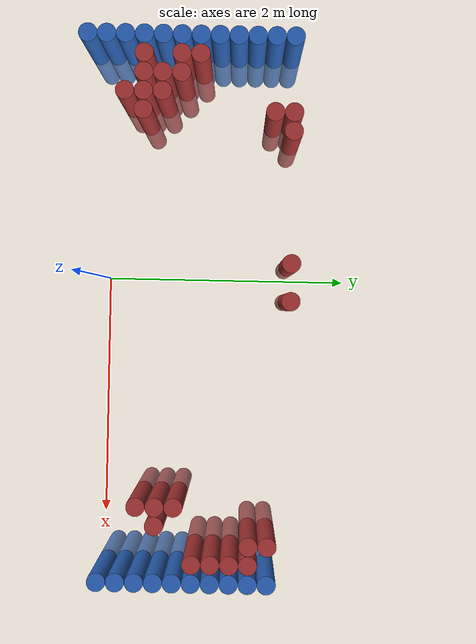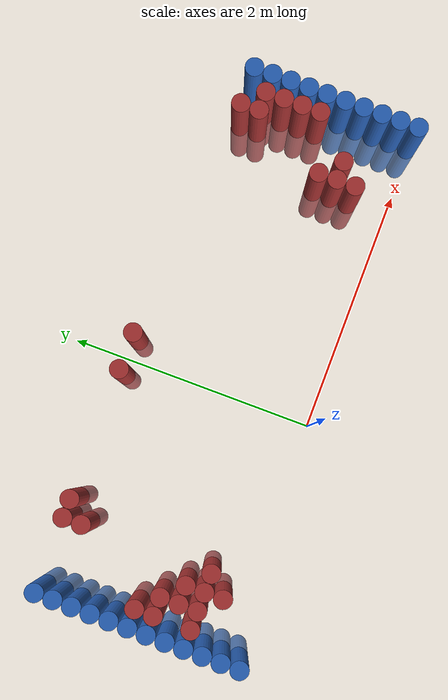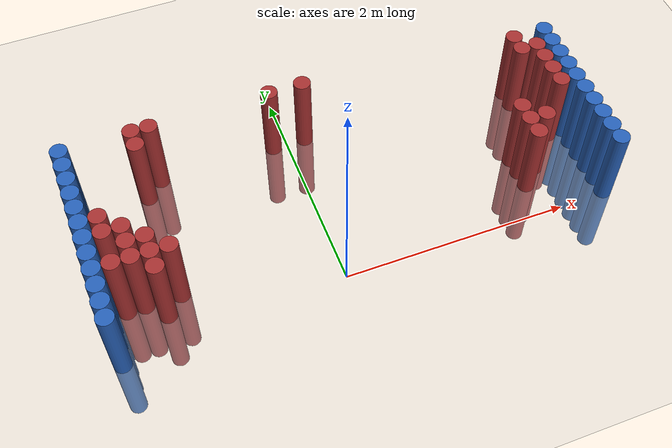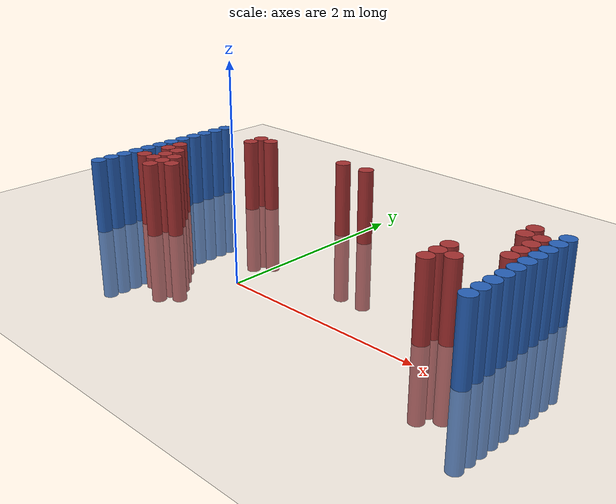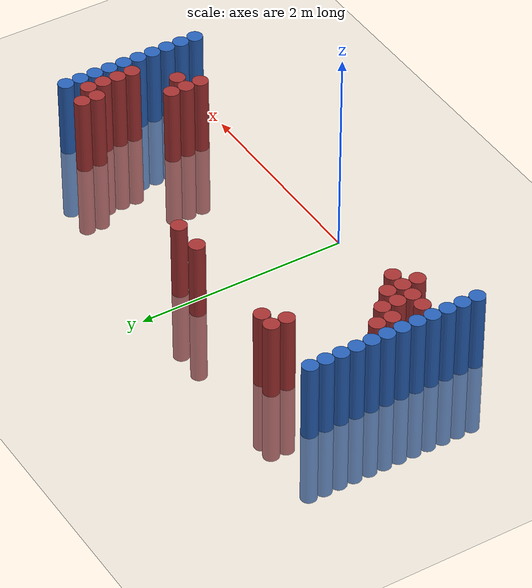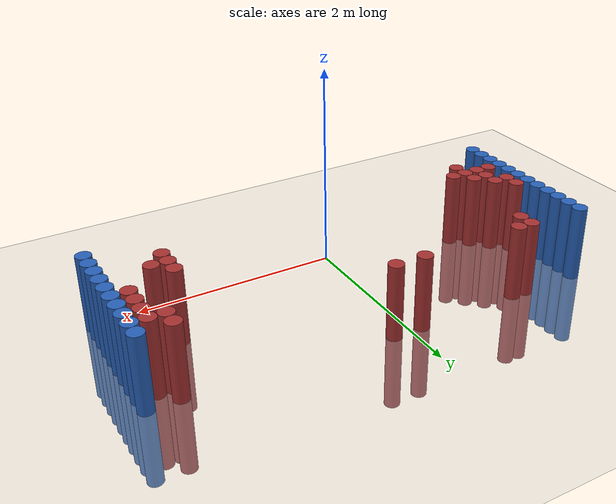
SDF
<sdf version="1.6">
 <world name="default">
  <model name="ground_plane">
   <static>1</static>
   <link name="link">
    <collision name="collision">
     <geometry><plane><normal>0 0 1</normal><size>100 100</size></plane></geometry>
     <surface><friction><ode><mu>100</mu><mu2>50</mu2></ode></friction></surface>
    </collision>
    <visual name="visual">
     <cast_shadows>0</cast_shadows>
     <geometry><plane><normal>0 0 1</normal><size>100 100</size></plane></geometry>
     <material>
      <script><uri>file://media/materials/scripts/gazebo.material</uri><name>Gazebo/Grey</name></script>
     </material>
    </visual>
   </link>
  </model>
  <model name="unit_cylinder_93">
   <static>1</static>
   <pose>-1.925000 -0.125000 0.000000 0.000000 0.000000 0.000000</pose>
   <link name="link">
    <inertial>
     <mass>1</mass>
     <inertia><ixx>0.145833</ixx><ixy>0</ixy><ixz>0</ixz><iyy>0.145833</iyy><iyz>0</iyz><izz>0.125</izz></inertia>
    </inertial>
    <collision name="collision">
     <geometry><cylinder><radius>0.075000</radius><length>1.5</length></cylinder></geometry>
    </collision>
    <visual name="visual">
     <geometry><cylinder><radius>0.075000</radius><length>1.5</length></cylinder></geometry>
     <material>
      <ambient>0.152000 0.379000 0.720000 1</ambient>
      <diffuse>0.152000 0.379000 0.720000 1</diffuse>
     </material>
     <material>
      <script><name>Gazebo/Grey</name><uri>file://media/materials/scripts/gazebo.material</uri></script>
     </material>
    </visual>
   </link>
  </model>
  <model name="unit_cylinder_94">
   <static>1</static>
   <pose>2.425000 0.025000 0.000000 0.000000 0.000000 0.000000</pose>
   <link name="link">
    <inertial>
     <mass>1</mass>
     <inertia><ixx>0.145833</ixx><ixy>0</ixy><ixz>0</ixz><iyy>0.145833</iyy><iyz>0</iyz><izz>0.125</izz></inertia>
    </inertial>
    <collision name="collision">
     <geometry><cylinder><radius>0.075000</radius><length>1.5</length></cylinder></geometry>
    </collision>
    <visual name="visual">
     <geometry><cylinder><radius>0.075000</radius><length>1.5</length></cylinder></geometry>
     <material>
      <ambient>0.152000 0.379000 0.720000 1</ambient>
      <diffuse>0.152000 0.379000 0.720000 1</diffuse>
     </material>
     <material>
      <script><name>Gazebo/Grey</name><uri>file://media/materials/scripts/gazebo.material</uri></script>
     </material>
    </visual>
   </link>
  </model>
  <model name="unit_cylinder_95">
   <static>1</static>
   <pose>-1.925000 0.025000 0.000000 0.000000 0.000000 0.000000</pose>
   <link name="link">
    <inertial>
     <mass>1</mass>
     <inertia><ixx>0.145833</ixx><ixy>0</ixy><ixz>0</ixz><iyy>0.145833</iyy><iyz>0</iyz><izz>0.125</izz></inertia>
    </inertial>
    <collision name="collision">
     <geometry><cylinder><radius>0.075000</radius><length>1.5</length></cylinder></geometry>
    </collision>
    <visual name="visual">
     <geometry><cylinder><radius>0.075000</radius><length>1.5</length></cylinder></geometry>
     <material>
      <ambient>0.152000 0.379000 0.720000 1</ambient>
      <diffuse>0.152000 0.379000 0.720000 1</diffuse>
     </material>
     <material>
      <script><name>Gazebo/Grey</name><uri>file://media/materials/scripts/gazebo.material</uri></script>
     </material>
    </visual>
   </link>
  </model>
  <model name="unit_cylinder_96">
   <static>1</static>
   <pose>-1.925000 0.175000 0.000000 0.000000 0.000000 0.000000</pose>
   <link name="link">
    <inertial>
     <mass>1</mass>
     <inertia><ixx>0.145833</ixx><ixy>0</ixy><ixz>0</ixz><iyy>0.145833</iyy><iyz>0</iyz><izz>0.125</izz></inertia>
    </inertial>
    <collision name="collision">
     <geometry><cylinder><radius>0.075000</radius><length>1.5</length></cylinder></geometry>
    </collision>
    <visual name="visual">
     <geometry><cylinder><radius>0.075000</radius><length>1.5</length></cylinder></geometry>
     <material>
      <ambient>0.152000 0.379000 0.720000 1</ambient>
      <diffuse>0.152000 0.379000 0.720000 1</diffuse>
     </material>
     <material>
      <script><name>Gazebo/Grey</name><uri>file://media/materials/scripts/gazebo.material</uri></script>
     </material>
    </visual>
   </link>
  </model>
  <model name="unit_cylinder_97">
   <static>1</static>
   <pose>-1.925000 0.325000 0.000000 0.000000 0.000000 0.000000</pose>
   <link name="link">
    <inertial>
     <mass>1</mass>
     <inertia><ixx>0.145833</ixx><ixy>0</ixy><ixz>0</ixz><iyy>0.145833</iyy><iyz>0</iyz><izz>0.125</izz></inertia>
    </inertial>
    <collision name="collision">
     <geometry><cylinder><radius>0.075000</radius><length>1.5</length></cylinder></geometry>
    </collision>
    <visual name="visual">
     <geometry><cylinder><radius>0.075000</radius><length>1.5</length></cylinder></geometry>
     <material>
      <ambient>0.152000 0.379000 0.720000 1</ambient>
      <diffuse>0.152000 0.379000 0.720000 1</diffuse>
     </material>
     <material>
      <script><name>Gazebo/Grey</name><uri>file://media/materials/scripts/gazebo.material</uri></script>
     </material>
    </visual>
   </link>
  </model>
  <model name="unit_cylinder_98">
   <static>1</static>
   <pose>-1.925000 0.475000 0.000000 0.000000 0.000000 0.000000</pose>
   <link name="link">
    <inertial>
     <mass>1</mass>
     <inertia><ixx>0.145833</ixx><ixy>0</ixy><ixz>0</ixz><iyy>0.145833</iyy><iyz>0</iyz><izz>0.125</izz></inertia>
    </inertial>
    <collision name="collision">
     <geometry><cylinder><radius>0.075000</radius><length>1.5</length></cylinder></geometry>
    </collision>
    <visual name="visual">
     <geometry><cylinder><radius>0.075000</radius><length>1.5</length></cylinder></geometry>
     <material>
      <ambient>0.152000 0.379000 0.720000 1</ambient>
      <diffuse>0.152000 0.379000 0.720000 1</diffuse>
     </material>
     <material>
      <script><name>Gazebo/Grey</name><uri>file://media/materials/scripts/gazebo.material</uri></script>
     </material>
    </visual>
   </link>
  </model>
  <model name="unit_cylinder_99">
   <static>1</static>
   <pose>-1.925000 0.625000 0.000000 0.000000 0.000000 0.000000</pose>
   <link name="link">
    <inertial>
     <mass>1</mass>
     <inertia><ixx>0.145833</ixx><ixy>0</ixy><ixz>0</ixz><iyy>0.145833</iyy><iyz>0</iyz><izz>0.125</izz></inertia>
    </inertial>
    <collision name="collision">
     <geometry><cylinder><radius>0.075000</radius><length>1.5</length></cylinder></geometry>
    </collision>
    <visual name="visual">
     <geometry><cylinder><radius>0.075000</radius><length>1.5</length></cylinder></geometry>
     <material>
      <ambient>0.152000 0.379000 0.720000 1</ambient>
      <diffuse>0.152000 0.379000 0.720000 1</diffuse>
     </material>
     <material>
      <script><name>Gazebo/Grey</name><uri>file://media/materials/scripts/gazebo.material</uri></script>
     </material>
    </visual>
   </link>
  </model>
  <model name="unit_cylinder_100">
   <static>1</static>
   <pose>-1.925000 0.775000 0.000000 0.000000 0.000000 0.000000</pose>
   <link name="link">
    <inertial>
     <mass>1</mass>
     <inertia><ixx>0.145833</ixx><ixy>0</ixy><ixz>0</ixz><iyy>0.145833</iyy><iyz>0</iyz><izz>0.125</izz></inertia>
    </inertial>
    <collision name="collision">
     <geometry><cylinder><radius>0.075000</radius><length>1.5</length></cylinder></geometry>
    </collision>
    <visual name="visual">
     <geometry><cylinder><radius>0.075000</radius><length>1.5</length></cylinder></geometry>
     <material>
      <ambient>0.152000 0.379000 0.720000 1</ambient>
      <diffuse>0.152000 0.379000 0.720000 1</diffuse>
     </material>
     <material>
      <script><name>Gazebo/Grey</name><uri>file://media/materials/scripts/gazebo.material</uri></script>
     </material>
    </visual>
   </link>
  </model>
  <model name="unit_cylinder_101">
   <static>1</static>
   <pose>-1.925000 0.925000 0.000000 0.000000 0.000000 0.000000</pose>
   <link name="link">
    <inertial>
     <mass>1</mass>
     <inertia><ixx>0.145833</ixx><ixy>0</ixy><ixz>0</ixz><iyy>0.145833</iyy><iyz>0</iyz><izz>0.125</izz></inertia>
    </inertial>
    <collision name="collision">
     <geometry><cylinder><radius>0.075000</radius><length>1.5</length></cylinder></geometry>
    </collision>
    <visual name="visual">
     <geometry><cylinder><radius>0.075000</radius><length>1.5</length></cylinder></geometry>
     <material>
      <ambient>0.152000 0.379000 0.720000 1</ambient>
      <diffuse>0.152000 0.379000 0.720000 1</diffuse>
     </material>
     <material>
      <script><name>Gazebo/Grey</name><uri>file://media/materials/scripts/gazebo.material</uri></script>
     </material>
    </visual>
   </link>
  </model>
  <model name="unit_cylinder_102">
   <static>1</static>
   <pose>-1.925000 1.075000 0.000000 0.000000 0.000000 0.000000</pose>
   <link name="link">
    <inertial>
     <mass>1</mass>
     <inertia><ixx>0.145833</ixx><ixy>0</ixy><ixz>0</ixz><iyy>0.145833</iyy><iyz>0</iyz><izz>0.125</izz></inertia>
    </inertial>
    <collision name="collision">
     <geometry><cylinder><radius>0.075000</radius><length>1.5</length></cylinder></geometry>
    </collision>
    <visual name="visual">
     <geometry><cylinder><radius>0.075000</radius><length>1.5</length></cylinder></geometry>
     <material>
      <ambient>0.152000 0.379000 0.720000 1</ambient>
      <diffuse>0.152000 0.379000 0.720000 1</diffuse>
     </material>
     <material>
      <script><name>Gazebo/Grey</name><uri>file://media/materials/scripts/gazebo.material</uri></script>
     </material>
    </visual>
   </link>
  </model>
  <model name="unit_cylinder_103">
   <static>1</static>
   <pose>-1.925000 1.225000 0.000000 0.000000 0.000000 0.000000</pose>
   <link name="link">
    <inertial>
     <mass>1</mass>
     <inertia><ixx>0.145833</ixx><ixy>0</ixy><ixz>0</ixz><iyy>0.145833</iyy><iyz>0</iyz><izz>0.125</izz></inertia>
    </inertial>
    <collision name="collision">
     <geometry><cylinder><radius>0.075000</radius><length>1.5</length></cylinder></geometry>
    </collision>
    <visual name="visual">
     <geometry><cylinder><radius>0.075000</radius><length>1.5</length></cylinder></geometry>
     <material>
      <ambient>0.152000 0.379000 0.720000 1</ambient>
      <diffuse>0.152000 0.379000 0.720000 1</diffuse>
     </material>
     <material>
      <script><name>Gazebo/Grey</name><uri>file://media/materials/scripts/gazebo.material</uri></script>
     </material>
    </visual>
   </link>
  </model>
  <model name="unit_cylinder_104">
   <static>1</static>
   <pose>-1.925000 1.375000 0.000000 0.000000 0.000000 0.000000</pose>
   <link name="link">
    <inertial>
     <mass>1</mass>
     <inertia><ixx>0.145833</ixx><ixy>0</ixy><ixz>0</ixz><iyy>0.145833</iyy><iyz>0</iyz><izz>0.125</izz></inertia>
    </inertial>
    <collision name="collision">
     <geometry><cylinder><radius>0.075000</radius><length>1.5</length></cylinder></geometry>
    </collision>
    <visual name="visual">
     <geometry><cylinder><radius>0.075000</radius><length>1.5</length></cylinder></geometry>
     <material>
      <ambient>0.152000 0.379000 0.720000 1</ambient>
      <diffuse>0.152000 0.379000 0.720000 1</diffuse>
     </material>
     <material>
      <script><name>Gazebo/Grey</name><uri>file://media/materials/scripts/gazebo.material</uri></script>
     </material>
    </visual>
   </link>
  </model>
  <model name="unit_cylinder_105">
   <static>1</static>
   <pose>-1.925000 1.525000 0.000000 0.000000 0.000000 0.000000</pose>
   <link name="link">
    <inertial>
     <mass>1</mass>
     <inertia><ixx>0.145833</ixx><ixy>0</ixy><ixz>0</ixz><iyy>0.145833</iyy><iyz>0</iyz><izz>0.125</izz></inertia>
    </inertial>
    <collision name="collision">
     <geometry><cylinder><radius>0.075000</radius><length>1.5</length></cylinder></geometry>
    </collision>
    <visual name="visual">
     <geometry><cylinder><radius>0.075000</radius><length>1.5</length></cylinder></geometry>
     <material>
      <ambient>0.152000 0.379000 0.720000 1</ambient>
      <diffuse>0.152000 0.379000 0.720000 1</diffuse>
     </material>
     <material>
      <script><name>Gazebo/Grey</name><uri>file://media/materials/scripts/gazebo.material</uri></script>
     </material>
    </visual>
   </link>
  </model>
  <model name="unit_cylinder_126">
   <static>1</static>
   <pose>-1.775000 0.325000 0.000000 0.000000 0.000000 0.000000</pose>
   <link name="link">
    <inertial>
     <mass>1</mass>
     <inertia><ixx>0.145833</ixx><ixy>0</ixy><ixz>0</ixz><iyy>0.145833</iyy><iyz>0</iyz><izz>0.125</izz></inertia>
    </inertial>
    <collision name="collision">
     <geometry><cylinder><radius>0.075000</radius><length>1.5</length></cylinder></geometry>
    </collision>
    <visual name="visual">
     <geometry><cylinder><radius>0.075000</radius><length>1.5</length></cylinder></geometry>
     <material>
      <ambient>0.648000 0.192000 0.192000 1</ambient>
      <diffuse>0.648000 0.192000 0.192000 1</diffuse>
     </material>
     <material>
      <script><name>Gazebo/Grey</name><uri>file://media/materials/scripts/gazebo.material</uri></script>
     </material>
    </visual>
   </link>
  </model>
  <model name="unit_cylinder_127">
   <static>1</static>
   <pose>-1.775000 0.625000 0.000000 0.000000 0.000000 0.000000</pose>
   <link name="link">
    <inertial>
     <mass>1</mass>
     <inertia><ixx>0.145833</ixx><ixy>0</ixy><ixz>0</ixz><iyy>0.145833</iyy><iyz>0</iyz><izz>0.125</izz></inertia>
    </inertial>
    <collision name="collision">
     <geometry><cylinder><radius>0.075000</radius><length>1.5</length></cylinder></geometry>
    </collision>
    <visual name="visual">
     <geometry><cylinder><radius>0.075000</radius><length>1.5</length></cylinder></geometry>
     <material>
      <ambient>0.648000 0.192000 0.192000 1</ambient>
      <diffuse>0.648000 0.192000 0.192000 1</diffuse>
     </material>
     <material>
      <script><name>Gazebo/Grey</name><uri>file://media/materials/scripts/gazebo.material</uri></script>
     </material>
    </visual>
   </link>
  </model>
  <model name="unit_cylinder_128">
   <static>1</static>
   <pose>-1.775000 0.775000 0.000000 0.000000 0.000000 0.000000</pose>
   <link name="link">
    <inertial>
     <mass>1</mass>
     <inertia><ixx>0.145833</ixx><ixy>0</ixy><ixz>0</ixz><iyy>0.145833</iyy><iyz>0</iyz><izz>0.125</izz></inertia>
    </inertial>
    <collision name="collision">
     <geometry><cylinder><radius>0.075000</radius><length>1.5</length></cylinder></geometry>
    </collision>
    <visual name="visual">
     <geometry><cylinder><radius>0.075000</radius><length>1.5</length></cylinder></geometry>
     <material>
      <ambient>0.648000 0.192000 0.192000 1</ambient>
      <diffuse>0.648000 0.192000 0.192000 1</diffuse>
     </material>
     <material>
      <script><name>Gazebo/Grey</name><uri>file://media/materials/scripts/gazebo.material</uri></script>
     </material>
    </visual>
   </link>
  </model>
  <model name="unit_cylinder_131">
   <static>1</static>
   <pose>-1.625000 0.325000 0.000000 0.000000 0.000000 0.000000</pose>
   <link name="link">
    <inertial>
     <mass>1</mass>
     <inertia><ixx>0.145833</ixx><ixy>0</ixy><ixz>0</ixz><iyy>0.145833</iyy><iyz>0</iyz><izz>0.125</izz></inertia>
    </inertial>
    <collision name="collision">
     <geometry><cylinder><radius>0.075000</radius><length>1.5</length></cylinder></geometry>
    </collision>
    <visual name="visual">
     <geometry><cylinder><radius>0.075000</radius><length>1.5</length></cylinder></geometry>
     <material>
      <ambient>0.648000 0.192000 0.192000 1</ambient>
      <diffuse>0.648000 0.192000 0.192000 1</diffuse>
     </material>
     <material>
      <script><name>Gazebo/Grey</name><uri>file://media/materials/scripts/gazebo.material</uri></script>
     </material>
    </visual>
   </link>
  </model>
  <model name="unit_cylinder_132">
   <static>1</static>
   <pose>-1.625000 0.475000 0.000000 0.000000 0.000000 0.000000</pose>
   <link name="link">
    <inertial>
     <mass>1</mass>
     <inertia><ixx>0.145833</ixx><ixy>0</ixy><ixz>0</ixz><iyy>0.145833</iyy><iyz>0</iyz><izz>0.125</izz></inertia>
    </inertial>
    <collision name="collision">
     <geometry><cylinder><radius>0.075000</radius><length>1.5</length></cylinder></geometry>
    </collision>
    <visual name="visual">
     <geometry><cylinder><radius>0.075000</radius><length>1.5</length></cylinder></geometry>
     <material>
      <ambient>0.648000 0.192000 0.192000 1</ambient>
      <diffuse>0.648000 0.192000 0.192000 1</diffuse>
     </material>
     <material>
      <script><name>Gazebo/Grey</name><uri>file://media/materials/scripts/gazebo.material</uri></script>
     </material>
    </visual>
   </link>
  </model>
  <model name="unit_cylinder_133">
   <static>1</static>
   <pose>-1.625000 0.625000 0.000000 0.000000 0.000000 0.000000</pose>
   <link name="link">
    <inertial>
     <mass>1</mass>
     <inertia><ixx>0.145833</ixx><ixy>0</ixy><ixz>0</ixz><iyy>0.145833</iyy><iyz>0</iyz><izz>0.125</izz></inertia>
    </inertial>
    <collision name="collision">
     <geometry><cylinder><radius>0.075000</radius><length>1.5</length></cylinder></geometry>
    </collision>
    <visual name="visual">
     <geometry><cylinder><radius>0.075000</radius><length>1.5</length></cylinder></geometry>
     <material>
      <ambient>0.648000 0.192000 0.192000 1</ambient>
      <diffuse>0.648000 0.192000 0.192000 1</diffuse>
     </material>
     <material>
      <script><name>Gazebo/Grey</name><uri>file://media/materials/scripts/gazebo.material</uri></script>
     </material>
    </visual>
   </link>
  </model>
  <model name="unit_cylinder_136">
   <static>1</static>
   <pose>-1.475000 0.175000 0.000000 0.000000 0.000000 0.000000</pose>
   <link name="link">
    <inertial>
     <mass>1</mass>
     <inertia><ixx>0.145833</ixx><ixy>0</ixy><ixz>0</ixz><iyy>0.145833</iyy><iyz>0</iyz><izz>0.125</izz></inertia>
    </inertial>
    <collision name="collision">
     <geometry><cylinder><radius>0.075000</radius><length>1.5</length></cylinder></geometry>
    </collision>
    <visual name="visual">
     <geometry><cylinder><radius>0.075000</radius><length>1.5</length></cylinder></geometry>
     <material>
      <ambient>0.648000 0.192000 0.192000 1</ambient>
      <diffuse>0.648000 0.192000 0.192000 1</diffuse>
     </material>
     <material>
      <script><name>Gazebo/Grey</name><uri>file://media/materials/scripts/gazebo.material</uri></script>
     </material>
    </visual>
   </link>
  </model>
  <model name="unit_cylinder_137">
   <static>1</static>
   <pose>-1.475000 0.325000 0.000000 0.000000 0.000000 0.000000</pose>
   <link name="link">
    <inertial>
     <mass>1</mass>
     <inertia><ixx>0.145833</ixx><ixy>0</ixy><ixz>0</ixz><iyy>0.145833</iyy><iyz>0</iyz><izz>0.125</izz></inertia>
    </inertial>
    <collision name="collision">
     <geometry><cylinder><radius>0.075000</radius><length>1.5</length></cylinder></geometry>
    </collision>
    <visual name="visual">
     <geometry><cylinder><radius>0.075000</radius><length>1.5</length></cylinder></geometry>
     <material>
      <ambient>0.648000 0.192000 0.192000 1</ambient>
      <diffuse>0.648000 0.192000 0.192000 1</diffuse>
     </material>
     <material>
      <script><name>Gazebo/Grey</name><uri>file://media/materials/scripts/gazebo.material</uri></script>
     </material>
    </visual>
   </link>
  </model>
  <model name="unit_cylinder_138">
   <static>1</static>
   <pose>-1.475000 0.475000 0.000000 0.000000 0.000000 0.000000</pose>
   <link name="link">
    <inertial>
     <mass>1</mass>
     <inertia><ixx>0.145833</ixx><ixy>0</ixy><ixz>0</ixz><iyy>0.145833</iyy><iyz>0</iyz><izz>0.125</izz></inertia>
    </inertial>
    <collision name="collision">
     <geometry><cylinder><radius>0.075000</radius><length>1.5</length></cylinder></geometry>
    </collision>
    <visual name="visual">
     <geometry><cylinder><radius>0.075000</radius><length>1.5</length></cylinder></geometry>
     <material>
      <ambient>0.648000 0.192000 0.192000 1</ambient>
      <diffuse>0.648000 0.192000 0.192000 1</diffuse>
     </material>
     <material>
      <script><name>Gazebo/Grey</name><uri>file://media/materials/scripts/gazebo.material</uri></script>
     </material>
    </visual>
   </link>
  </model>
  <model name="unit_cylinder_151">
   <static>1</static>
   <pose>-1.325000 0.325000 0.000000 0.000000 0.000000 0.000000</pose>
   <link name="link">
    <inertial>
     <mass>1</mass>
     <inertia><ixx>0.145833</ixx><ixy>0</ixy><ixz>0</ixz><iyy>0.145833</iyy><iyz>0</iyz><izz>0.125</izz></inertia>
    </inertial>
    <collision name="collision">
     <geometry><cylinder><radius>0.075000</radius><length>1.5</length></cylinder></geometry>
    </collision>
    <visual name="visual">
     <geometry><cylinder><radius>0.075000</radius><length>1.5</length></cylinder></geometry>
     <material>
      <ambient>0.648000 0.192000 0.192000 1</ambient>
      <diffuse>0.648000 0.192000 0.192000 1</diffuse>
     </material>
     <material>
      <script><name>Gazebo/Grey</name><uri>file://media/materials/scripts/gazebo.material</uri></script>
     </material>
    </visual>
   </link>
  </model>
  <model name="unit_cylinder_152">
   <static>1</static>
   <pose>-1.325000 1.375000 0.000000 0.000000 0.000000 0.000000</pose>
   <link name="link">
    <inertial>
     <mass>1</mass>
     <inertia><ixx>0.145833</ixx><ixy>0</ixy><ixz>0</ixz><iyy>0.145833</iyy><iyz>0</iyz><izz>0.125</izz></inertia>
    </inertial>
    <collision name="collision">
     <geometry><cylinder><radius>0.075000</radius><length>1.5</length></cylinder></geometry>
    </collision>
    <visual name="visual">
     <geometry><cylinder><radius>0.075000</radius><length>1.5</length></cylinder></geometry>
     <material>
      <ambient>0.648000 0.192000 0.192000 1</ambient>
      <diffuse>0.648000 0.192000 0.192000 1</diffuse>
     </material>
     <material>
      <script><name>Gazebo/Grey</name><uri>file://media/materials/scripts/gazebo.material</uri></script>
     </material>
    </visual>
   </link>
  </model>
  <model name="unit_cylinder_153">
   <static>1</static>
   <pose>-1.325000 1.525000 0.000000 0.000000 0.000000 0.000000</pose>
   <link name="link">
    <inertial>
     <mass>1</mass>
     <inertia><ixx>0.145833</ixx><ixy>0</ixy><ixz>0</ixz><iyy>0.145833</iyy><iyz>0</iyz><izz>0.125</izz></inertia>
    </inertial>
    <collision name="collision">
     <geometry><cylinder><radius>0.075000</radius><length>1.5</length></cylinder></geometry>
    </collision>
    <visual name="visual">
     <geometry><cylinder><radius>0.075000</radius><length>1.5</length></cylinder></geometry>
     <material>
      <ambient>0.648000 0.192000 0.192000 1</ambient>
      <diffuse>0.648000 0.192000 0.192000 1</diffuse>
     </material>
     <material>
      <script><name>Gazebo/Grey</name><uri>file://media/materials/scripts/gazebo.material</uri></script>
     </material>
    </visual>
   </link>
  </model>
  <model name="unit_cylinder_158">
   <static>1</static>
   <pose>-1.175000 1.525000 0.000000 0.000000 0.000000 0.000000</pose>
   <link name="link">
    <inertial>
     <mass>1</mass>
     <inertia><ixx>0.145833</ixx><ixy>0</ixy><ixz>0</ixz><iyy>0.145833</iyy><iyz>0</iyz><izz>0.125</izz></inertia>
    </inertial>
    <collision name="collision">
     <geometry><cylinder><radius>0.075000</radius><length>1.5</length></cylinder></geometry>
    </collision>
    <visual name="visual">
     <geometry><cylinder><radius>0.075000</radius><length>1.5</length></cylinder></geometry>
     <material>
      <ambient>0.648000 0.192000 0.192000 1</ambient>
      <diffuse>0.648000 0.192000 0.192000 1</diffuse>
     </material>
     <material>
      <script><name>Gazebo/Grey</name><uri>file://media/materials/scripts/gazebo.material</uri></script>
     </material>
    </visual>
   </link>
  </model>
  <model name="unit_cylinder_181">
   <static>1</static>
   <pose>-0.125000 1.525000 0.000000 0.000000 0.000000 0.000000</pose>
   <link name="link">
    <inertial>
     <mass>1</mass>
     <inertia><ixx>0.145833</ixx><ixy>0</ixy><ixz>0</ixz><iyy>0.145833</iyy><iyz>0</iyz><izz>0.125</izz></inertia>
    </inertial>
    <collision name="collision">
     <geometry><cylinder><radius>0.075000</radius><length>1.5</length></cylinder></geometry>
    </collision>
    <visual name="visual">
     <geometry><cylinder><radius>0.075000</radius><length>1.5</length></cylinder></geometry>
     <material>
      <ambient>0.648000 0.192000 0.192000 1</ambient>
      <diffuse>0.648000 0.192000 0.192000 1</diffuse>
     </material>
     <material>
      <script><name>Gazebo/Grey</name><uri>file://media/materials/scripts/gazebo.material</uri></script>
     </material>
    </visual>
   </link>
  </model>
  <model name="unit_cylinder_198">
   <static>1</static>
   <pose>0.175000 1.525000 0.000000 0.000000 0.000000 0.000000</pose>
   <link name="link">
    <inertial>
     <mass>1</mass>
     <inertia><ixx>0.145833</ixx><ixy>0</ixy><ixz>0</ixz><iyy>0.145833</iyy><iyz>0</iyz><izz>0.125</izz></inertia>
    </inertial>
    <collision name="collision">
     <geometry><cylinder><radius>0.075000</radius><length>1.5</length></cylinder></geometry>
    </collision>
    <visual name="visual">
     <geometry><cylinder><radius>0.075000</radius><length>1.5</length></cylinder></geometry>
     <material>
      <ambient>0.648000 0.192000 0.192000 1</ambient>
      <diffuse>0.648000 0.192000 0.192000 1</diffuse>
     </material>
     <material>
      <script><name>Gazebo/Grey</name><uri>file://media/materials/scripts/gazebo.material</uri></script>
     </material>
    </visual>
   </link>
  </model>
  <model name="unit_cylinder_217">
   <static>1</static>
   <pose>1.825000 0.325000 0.000000 0.000000 0.000000 0.000000</pose>
   <link name="link">
    <inertial>
     <mass>1</mass>
     <inertia><ixx>0.145833</ixx><ixy>0</ixy><ixz>0</ixz><iyy>0.145833</iyy><iyz>0</iyz><izz>0.125</izz></inertia>
    </inertial>
    <collision name="collision">
     <geometry><cylinder><radius>0.075000</radius><length>1.5</length></cylinder></geometry>
    </collision>
    <visual name="visual">
     <geometry><cylinder><radius>0.075000</radius><length>1.5</length></cylinder></geometry>
     <material>
      <ambient>0.648000 0.192000 0.192000 1</ambient>
      <diffuse>0.648000 0.192000 0.192000 1</diffuse>
     </material>
     <material>
      <script><name>Gazebo/Grey</name><uri>file://media/materials/scripts/gazebo.material</uri></script>
     </material>
    </visual>
   </link>
  </model>
  <model name="unit_cylinder_218">
   <static>1</static>
   <pose>1.825000 0.475000 0.000000 0.000000 0.000000 0.000000</pose>
   <link name="link">
    <inertial>
     <mass>1</mass>
     <inertia><ixx>0.145833</ixx><ixy>0</ixy><ixz>0</ixz><iyy>0.145833</iyy><iyz>0</iyz><izz>0.125</izz></inertia>
    </inertial>
    <collision name="collision">
     <geometry><cylinder><radius>0.075000</radius><length>1.5</length></cylinder></geometry>
    </collision>
    <visual name="visual">
     <geometry><cylinder><radius>0.075000</radius><length>1.5</length></cylinder></geometry>
     <material>
      <ambient>0.648000 0.192000 0.192000 1</ambient>
      <diffuse>0.648000 0.192000 0.192000 1</diffuse>
     </material>
     <material>
      <script><name>Gazebo/Grey</name><uri>file://media/materials/scripts/gazebo.material</uri></script>
     </material>
    </visual>
   </link>
  </model>
  <model name="unit_cylinder_219">
   <static>1</static>
   <pose>1.825000 0.625000 0.000000 0.000000 0.000000 0.000000</pose>
   <link name="link">
    <inertial>
     <mass>1</mass>
     <inertia><ixx>0.145833</ixx><ixy>0</ixy><ixz>0</ixz><iyy>0.145833</iyy><iyz>0</iyz><izz>0.125</izz></inertia>
    </inertial>
    <collision name="collision">
     <geometry><cylinder><radius>0.075000</radius><length>1.5</length></cylinder></geometry>
    </collision>
    <visual name="visual">
     <geometry><cylinder><radius>0.075000</radius><length>1.5</length></cylinder></geometry>
     <material>
      <ambient>0.648000 0.192000 0.192000 1</ambient>
      <diffuse>0.648000 0.192000 0.192000 1</diffuse>
     </material>
     <material>
      <script><name>Gazebo/Grey</name><uri>file://media/materials/scripts/gazebo.material</uri></script>
     </material>
    </visual>
   </link>
  </model>
  <model name="unit_cylinder_220">
   <static>1</static>
   <pose>1.975000 0.475000 0.000000 0.000000 0.000000 0.000000</pose>
   <link name="link">
    <inertial>
     <mass>1</mass>
     <inertia><ixx>0.145833</ixx><ixy>0</ixy><ixz>0</ixz><iyy>0.145833</iyy><iyz>0</iyz><izz>0.125</izz></inertia>
    </inertial>
    <collision name="collision">
     <geometry><cylinder><radius>0.075000</radius><length>1.5</length></cylinder></geometry>
    </collision>
    <visual name="visual">
     <geometry><cylinder><radius>0.075000</radius><length>1.5</length></cylinder></geometry>
     <material>
      <ambient>0.648000 0.192000 0.192000 1</ambient>
      <diffuse>0.648000 0.192000 0.192000 1</diffuse>
     </material>
     <material>
      <script><name>Gazebo/Grey</name><uri>file://media/materials/scripts/gazebo.material</uri></script>
     </material>
    </visual>
   </link>
  </model>
  <model name="unit_cylinder_223">
   <static>1</static>
   <pose>2.125000 1.225000 0.000000 0.000000 0.000000 0.000000</pose>
   <link name="link">
    <inertial>
     <mass>1</mass>
     <inertia><ixx>0.145833</ixx><ixy>0</ixy><ixz>0</ixz><iyy>0.145833</iyy><iyz>0</iyz><izz>0.125</izz></inertia>
    </inertial>
    <collision name="collision">
     <geometry><cylinder><radius>0.075000</radius><length>1.5</length></cylinder></geometry>
    </collision>
    <visual name="visual">
     <geometry><cylinder><radius>0.075000</radius><length>1.5</length></cylinder></geometry>
     <material>
      <ambient>0.648000 0.192000 0.192000 1</ambient>
      <diffuse>0.648000 0.192000 0.192000 1</diffuse>
     </material>
     <material>
      <script><name>Gazebo/Grey</name><uri>file://media/materials/scripts/gazebo.material</uri></script>
     </material>
    </visual>
   </link>
  </model>
  <model name="unit_cylinder_224">
   <static>1</static>
   <pose>2.125000 1.375000 0.000000 0.000000 0.000000 0.000000</pose>
   <link name="link">
    <inertial>
     <mass>1</mass>
     <inertia><ixx>0.145833</ixx><ixy>0</ixy><ixz>0</ixz><iyy>0.145833</iyy><iyz>0</iyz><izz>0.125</izz></inertia>
    </inertial>
    <collision name="collision">
     <geometry><cylinder><radius>0.075000</radius><length>1.5</length></cylinder></geometry>
    </collision>
    <visual name="visual">
     <geometry><cylinder><radius>0.075000</radius><length>1.5</length></cylinder></geometry>
     <material>
      <ambient>0.648000 0.192000 0.192000 1</ambient>
      <diffuse>0.648000 0.192000 0.192000 1</diffuse>
     </material>
     <material>
      <script><name>Gazebo/Grey</name><uri>file://media/materials/scripts/gazebo.material</uri></script>
     </material>
    </visual>
   </link>
  </model>
  <model name="unit_cylinder_232">
   <static>1</static>
   <pose>2.275000 0.775000 0.000000 0.000000 0.000000 0.000000</pose>
   <link name="link">
    <inertial>
     <mass>1</mass>
     <inertia><ixx>0.145833</ixx><ixy>0</ixy><ixz>0</ixz><iyy>0.145833</iyy><iyz>0</iyz><izz>0.125</izz></inertia>
    </inertial>
    <collision name="collision">
     <geometry><cylinder><radius>0.075000</radius><length>1.5</length></cylinder></geometry>
    </collision>
    <visual name="visual">
     <geometry><cylinder><radius>0.075000</radius><length>1.5</length></cylinder></geometry>
     <material>
      <ambient>0.648000 0.192000 0.192000 1</ambient>
      <diffuse>0.648000 0.192000 0.192000 1</diffuse>
     </material>
     <material>
      <script><name>Gazebo/Grey</name><uri>file://media/materials/scripts/gazebo.material</uri></script>
     </material>
    </visual>
   </link>
  </model>
  <model name="unit_cylinder_233">
   <static>1</static>
   <pose>2.275000 0.925000 0.000000 0.000000 0.000000 0.000000</pose>
   <link name="link">
    <inertial>
     <mass>1</mass>
     <inertia><ixx>0.145833</ixx><ixy>0</ixy><ixz>0</ixz><iyy>0.145833</iyy><iyz>0</iyz><izz>0.125</izz></inertia>
    </inertial>
    <collision name="collision">
     <geometry><cylinder><radius>0.075000</radius><length>1.5</length></cylinder></geometry>
    </collision>
    <visual name="visual">
     <geometry><cylinder><radius>0.075000</radius><length>1.5</length></cylinder></geometry>
     <material>
      <ambient>0.648000 0.192000 0.192000 1</ambient>
      <diffuse>0.648000 0.192000 0.192000 1</diffuse>
     </material>
     <material>
      <script><name>Gazebo/Grey</name><uri>file://media/materials/scripts/gazebo.material</uri></script>
     </material>
    </visual>
   </link>
  </model>
  <model name="unit_cylinder_234">
   <static>1</static>
   <pose>2.275000 1.075000 0.000000 0.000000 0.000000 0.000000</pose>
   <link name="link">
    <inertial>
     <mass>1</mass>
     <inertia><ixx>0.145833</ixx><ixy>0</ixy><ixz>0</ixz><iyy>0.145833</iyy><iyz>0</iyz><izz>0.125</izz></inertia>
    </inertial>
    <collision name="collision">
     <geometry><cylinder><radius>0.075000</radius><length>1.5</length></cylinder></geometry>
    </collision>
    <visual name="visual">
     <geometry><cylinder><radius>0.075000</radius><length>1.5</length></cylinder></geometry>
     <material>
      <ambient>0.648000 0.192000 0.192000 1</ambient>
      <diffuse>0.648000 0.192000 0.192000 1</diffuse>
     </material>
     <material>
      <script><name>Gazebo/Grey</name><uri>file://media/materials/scripts/gazebo.material</uri></script>
     </material>
    </visual>
   </link>
  </model>
  <model name="unit_cylinder_235">
   <static>1</static>
   <pose>2.275000 1.225000 0.000000 0.000000 0.000000 0.000000</pose>
   <link name="link">
    <inertial>
     <mass>1</mass>
     <inertia><ixx>0.145833</ixx><ixy>0</ixy><ixz>0</ixz><iyy>0.145833</iyy><iyz>0</iyz><izz>0.125</izz></inertia>
    </inertial>
    <collision name="collision">
     <geometry><cylinder><radius>0.075000</radius><length>1.5</length></cylinder></geometry>
    </collision>
    <visual name="visual">
     <geometry><cylinder><radius>0.075000</radius><length>1.5</length></cylinder></geometry>
     <material>
      <ambient>0.648000 0.192000 0.192000 1</ambient>
      <diffuse>0.648000 0.192000 0.192000 1</diffuse>
     </material>
     <material>
      <script><name>Gazebo/Grey</name><uri>file://media/materials/scripts/gazebo.material</uri></script>
     </material>
    </visual>
   </link>
  </model>
  <model name="unit_cylinder_249">
   <static>1</static>
   <pose>2.425000 0.175000 0.000000 0.000000 0.000000 0.000000</pose>
   <link name="link">
    <inertial>
     <mass>1</mass>
     <inertia><ixx>0.145833</ixx><ixy>0</ixy><ixz>0</ixz><iyy>0.145833</iyy><iyz>0</iyz><izz>0.125</izz></inertia>
    </inertial>
    <collision name="collision">
     <geometry><cylinder><radius>0.075000</radius><length>1.5</length></cylinder></geometry>
    </collision>
    <visual name="visual">
     <geometry><cylinder><radius>0.075000</radius><length>1.5</length></cylinder></geometry>
     <material>
      <ambient>0.152000 0.379000 0.720000 1</ambient>
      <diffuse>0.152000 0.379000 0.720000 1</diffuse>
     </material>
     <material>
      <script><name>Gazebo/Grey</name><uri>file://media/materials/scripts/gazebo.material</uri></script>
     </material>
    </visual>
   </link>
  </model>
  <model name="unit_cylinder_250">
   <static>1</static>
   <pose>2.425000 0.325000 0.000000 0.000000 0.000000 0.000000</pose>
   <link name="link">
    <inertial>
     <mass>1</mass>
     <inertia><ixx>0.145833</ixx><ixy>0</ixy><ixz>0</ixz><iyy>0.145833</iyy><iyz>0</iyz><izz>0.125</izz></inertia>
    </inertial>
    <collision name="collision">
     <geometry><cylinder><radius>0.075000</radius><length>1.5</length></cylinder></geometry>
    </collision>
    <visual name="visual">
     <geometry><cylinder><radius>0.075000</radius><length>1.5</length></cylinder></geometry>
     <material>
      <ambient>0.152000 0.379000 0.720000 1</ambient>
      <diffuse>0.152000 0.379000 0.720000 1</diffuse>
     </material>
     <material>
      <script><name>Gazebo/Grey</name><uri>file://media/materials/scripts/gazebo.material</uri></script>
     </material>
    </visual>
   </link>
  </model>
  <model name="unit_cylinder_251">
   <static>1</static>
   <pose>2.425000 0.475000 0.000000 0.000000 0.000000 0.000000</pose>
   <link name="link">
    <inertial>
     <mass>1</mass>
     <inertia><ixx>0.145833</ixx><ixy>0</ixy><ixz>0</ixz><iyy>0.145833</iyy><iyz>0</iyz><izz>0.125</izz></inertia>
    </inertial>
    <collision name="collision">
     <geometry><cylinder><radius>0.075000</radius><length>1.5</length></cylinder></geometry>
    </collision>
    <visual name="visual">
     <geometry><cylinder><radius>0.075000</radius><length>1.5</length></cylinder></geometry>
     <material>
      <ambient>0.152000 0.379000 0.720000 1</ambient>
      <diffuse>0.152000 0.379000 0.720000 1</diffuse>
     </material>
     <material>
      <script><name>Gazebo/Grey</name><uri>file://media/materials/scripts/gazebo.material</uri></script>
     </material>
    </visual>
   </link>
  </model>
  <model name="unit_cylinder_252">
   <static>1</static>
   <pose>2.425000 0.625000 0.000000 0.000000 0.000000 0.000000</pose>
   <link name="link">
    <inertial>
     <mass>1</mass>
     <inertia><ixx>0.145833</ixx><ixy>0</ixy><ixz>0</ixz><iyy>0.145833</iyy><iyz>0</iyz><izz>0.125</izz></inertia>
    </inertial>
    <collision name="collision">
     <geometry><cylinder><radius>0.075000</radius><length>1.5</length></cylinder></geometry>
    </collision>
    <visual name="visual">
     <geometry><cylinder><radius>0.075000</radius><length>1.5</length></cylinder></geometry>
     <material>
      <ambient>0.152000 0.379000 0.720000 1</ambient>
      <diffuse>0.152000 0.379000 0.720000 1</diffuse>
     </material>
     <material>
      <script><name>Gazebo/Grey</name><uri>file://media/materials/scripts/gazebo.material</uri></script>
     </material>
    </visual>
   </link>
  </model>
  <model name="unit_cylinder_253">
   <static>1</static>
   <pose>2.425000 0.775000 0.000000 0.000000 0.000000 0.000000</pose>
   <link name="link">
    <inertial>
     <mass>1</mass>
     <inertia><ixx>0.145833</ixx><ixy>0</ixy><ixz>0</ixz><iyy>0.145833</iyy><iyz>0</iyz><izz>0.125</izz></inertia>
    </inertial>
    <collision name="collision">
     <geometry><cylinder><radius>0.075000</radius><length>1.5</length></cylinder></geometry>
    </collision>
    <visual name="visual">
     <geometry><cylinder><radius>0.075000</radius><length>1.5</length></cylinder></geometry>
     <material>
      <ambient>0.152000 0.379000 0.720000 1</ambient>
      <diffuse>0.152000 0.379000 0.720000 1</diffuse>
     </material>
     <material>
      <script><name>Gazebo/Grey</name><uri>file://media/materials/scripts/gazebo.material</uri></script>
     </material>
    </visual>
   </link>
  </model>
  <model name="unit_cylinder_254">
   <static>1</static>
   <pose>2.425000 0.925000 0.000000 0.000000 0.000000 0.000000</pose>
   <link name="link">
    <inertial>
     <mass>1</mass>
     <inertia><ixx>0.145833</ixx><ixy>0</ixy><ixz>0</ixz><iyy>0.145833</iyy><iyz>0</iyz><izz>0.125</izz></inertia>
    </inertial>
    <collision name="collision">
     <geometry><cylinder><radius>0.075000</radius><length>1.5</length></cylinder></geometry>
    </collision>
    <visual name="visual">
     <geometry><cylinder><radius>0.075000</radius><length>1.5</length></cylinder></geometry>
     <material>
      <ambient>0.152000 0.379000 0.720000 1</ambient>
      <diffuse>0.152000 0.379000 0.720000 1</diffuse>
     </material>
     <material>
      <script><name>Gazebo/Grey</name><uri>file://media/materials/scripts/gazebo.material</uri></script>
     </material>
    </visual>
   </link>
  </model>
  <model name="unit_cylinder_255">
   <static>1</static>
   <pose>2.425000 1.075000 0.000000 0.000000 0.000000 0.000000</pose>
   <link name="link">
    <inertial>
     <mass>1</mass>
     <inertia><ixx>0.145833</ixx><ixy>0</ixy><ixz>0</ixz><iyy>0.145833</iyy><iyz>0</iyz><izz>0.125</izz></inertia>
    </inertial>
    <collision name="collision">
     <geometry><cylinder><radius>0.075000</radius><length>1.5</length></cylinder></geometry>
    </collision>
    <visual name="visual">
     <geometry><cylinder><radius>0.075000</radius><length>1.5</length></cylinder></geometry>
     <material>
      <ambient>0.152000 0.379000 0.720000 1</ambient>
      <diffuse>0.152000 0.379000 0.720000 1</diffuse>
     </material>
     <material>
      <script><name>Gazebo/Grey</name><uri>file://media/materials/scripts/gazebo.material</uri></script>
     </material>
    </visual>
   </link>
  </model>
  <model name="unit_cylinder_256">
   <static>1</static>
   <pose>2.425000 1.225000 0.000000 0.000000 0.000000 0.000000</pose>
   <link name="link">
    <inertial>
     <mass>1</mass>
     <inertia><ixx>0.145833</ixx><ixy>0</ixy><ixz>0</ixz><iyy>0.145833</iyy><iyz>0</iyz><izz>0.125</izz></inertia>
    </inertial>
    <collision name="collision">
     <geometry><cylinder><radius>0.075000</radius><length>1.5</length></cylinder></geometry>
    </collision>
    <visual name="visual">
     <geometry><cylinder><radius>0.075000</radius><length>1.5</length></cylinder></geometry>
     <material>
      <ambient>0.152000 0.379000 0.720000 1</ambient>
      <diffuse>0.152000 0.379000 0.720000 1</diffuse>
     </material>
     <material>
      <script><name>Gazebo/Grey</name><uri>file://media/materials/scripts/gazebo.material</uri></script>
     </material>
    </visual>
   </link>
  </model>
  <model name="unit_cylinder_257">
   <static>1</static>
   <pose>2.425000 1.375000 0.000000 0.000000 0.000000 0.000000</pose>
   <link name="link">
    <inertial>
     <mass>1</mass>
     <inertia><ixx>0.145833</ixx><ixy>0</ixy><ixz>0</ixz><iyy>0.145833</iyy><iyz>0</iyz><izz>0.125</izz></inertia>
    </inertial>
    <collision name="collision">
     <geometry><cylinder><radius>0.075000</radius><length>1.5</length></cylinder></geometry>
    </collision>
    <visual name="visual">
     <geometry><cylinder><radius>0.075000</radius><length>1.5</length></cylinder></geometry>
     <material>
      <ambient>0.152000 0.379000 0.720000 1</ambient>
      <diffuse>0.152000 0.379000 0.720000 1</diffuse>
     </material>
     <material>
      <script><name>Gazebo/Grey</name><uri>file://media/materials/scripts/gazebo.material</uri></script>
     </material>
    </visual>
   </link>
  </model>
 </world>
</sdf>
